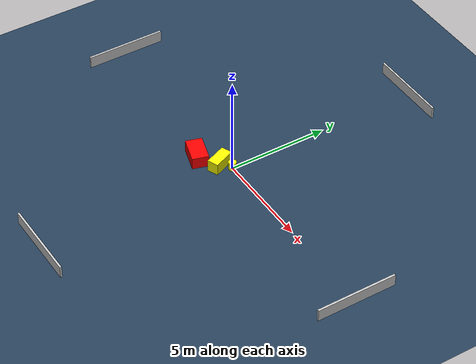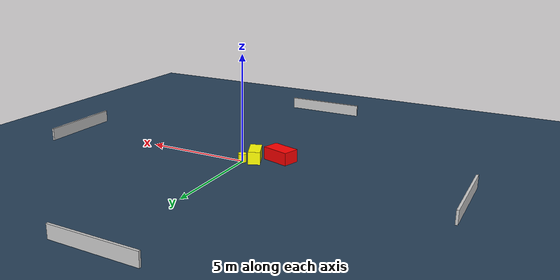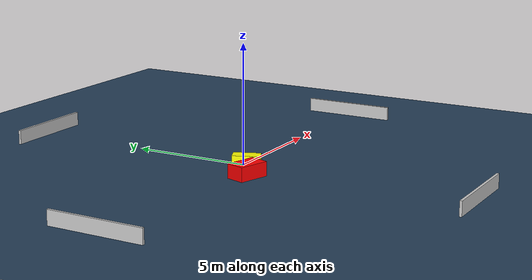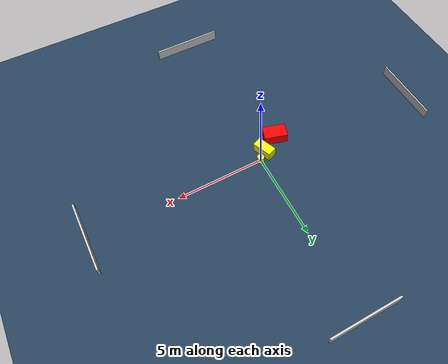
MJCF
<?xml version="1.0" ?>
<mujoco model="generated_environment">
  <option timestep="0.01" integrator="RK4" cone="elliptic"/>
  <default>
    <geom density="1"/>
  </default>
  <asset>
    <texture builtin="gradient" height="3072" name="skybox" rgb1="0.3 0.5 0.7" rgb2="0 0 0" type="skybox" width="512"/>
    <texture builtin="checker" height="300" name="groundplane" rgb1="0.2 0.3 0.4" rgb2="0.1 0.2 0.3" type="2d" width="300"/>
    <material name="groundplane" reflectance="0.2" texrepeat="5 5" texture="groundplane"/>
  </asset>
  <worldbody>
    <light dir="0 0 -1" directional="true" pos="0 0 1.5"/>
    <geom condim="3" friction="0.5 0.005 0.001" material="groundplane" name="floor" pos="0 0 0" size="0 0 0.05" type="plane"/>
    <body name="walls">
      <geom name="wall_1" condim="4" pos="-10.0 0.0 0.3" rgba="0.800000011920929 0.800000011920929 0.800000011920929 1.0" size="0.05 2.0 0.3" type="box"/>
      <geom name="wall_2" condim="4" pos="10.0 0.0 0.3" rgba="0.800000011920929 0.800000011920929 0.800000011920929 1.0" size="0.05 2.0 0.3" type="box"/>
      <geom name="wall_3" condim="4" pos="0.0 -10.0 0.3" rgba="0.800000011920929 0.800000011920929 0.800000011920929 1.0" size="2.0 0.05 0.3" type="box"/>
      <geom name="wall_4" condim="4" pos="0.0 10.0 0.3" rgba="0.800000011920929 0.800000011920929 0.800000011920929 1.0" size="2.0 0.05 0.3" type="box"/>
    </body>
    <body name="robot">
      <joint name="joint_x" type="slide" pos="0 0 0" axis="1 0 0"/>
      <joint name="joint_y" type="slide" pos="0 0 0" axis="0 1 0"/>
      <geom name="robot" type="cylinder" pos="0.0 0.0 0.2" size="0.2 0.2 0.0" mass="5.0" friction="1.0 0.005 0.0001" condim="4" rgba="1.0 1.0 0.0 1.0"/>
    </body>
    <body name="obstacle_1_movable">
      <geom name="obstacle_1_movable" condim="4" pos="-0.4504869813212146 -0.40959644870739115 0.3" euler="0 0 112.59598013156257" friction="0.0 0.005 0.001" rgba="1.0 1.0 0.0 1.0" size="0.5694478507016707 0.2780871861940777 0.3" type="box" mass="0.1"/>
      <joint type="free"/>
    </body>
    <body name="obstacle_2_static">
      <geom name="obstacle_2_static" condim="4" pos="-1.465451806999805 -1.0202205976775522 0.3" euler="0 0 73.18564735121463" friction="0.0 0.005 0.001" rgba="1.0 0.0 0.0 1.0" size="0.4087577371111619 0.6652531846272907 0.3" type="box"/>
    </body>
  </worldbody>
  <actuator>
    <motor name="actuator_x" joint="joint_x" gear="1" ctrlrange="-1 1"/>
    <motor name="actuator_y" joint="joint_y" gear="1" ctrlrange="-1 1"/>
  </actuator>
</mujoco>
